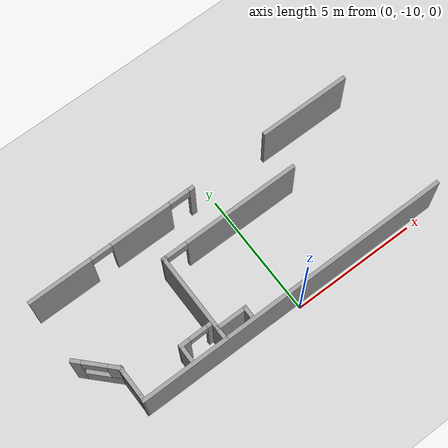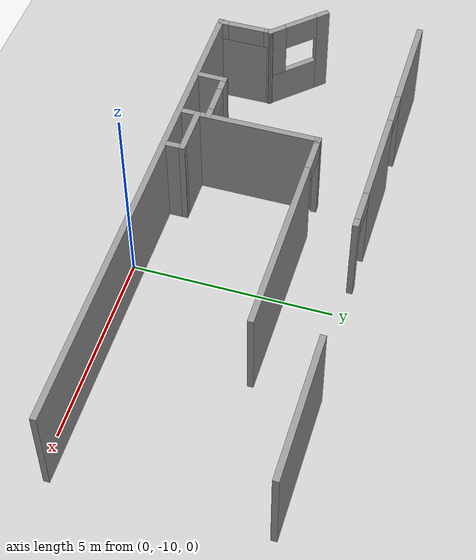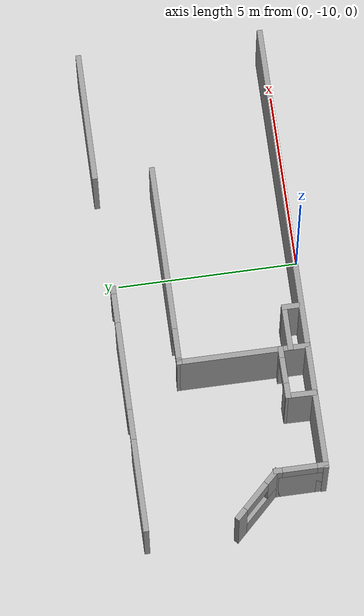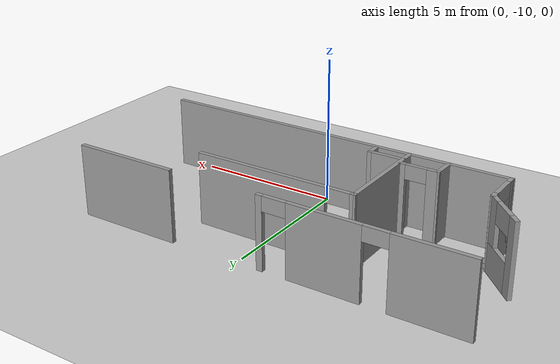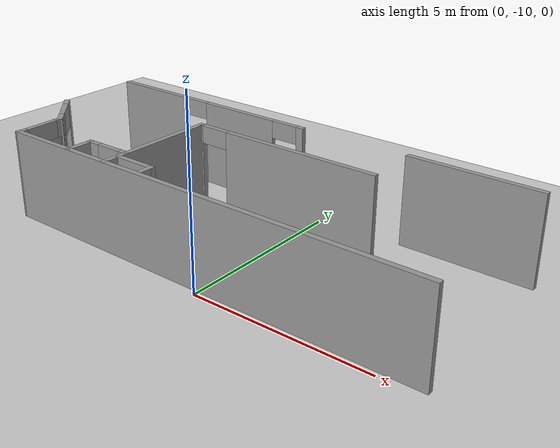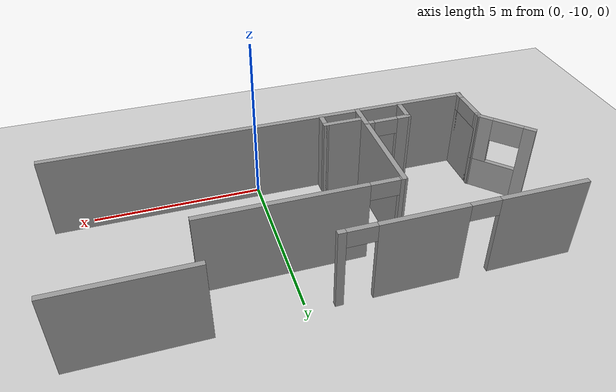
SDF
<sdf version="1.7">
 <world name="default">
  <model name="ground_plane">
   <static>1</static>
   <link name="link">
    <collision name="collision">
     <geometry><plane><normal>0 0 1</normal><size>100 100</size></plane></geometry>
     <surface><friction><ode><mu>100</mu><mu2>50</mu2></ode></friction></surface>
    </collision>
    <visual name="visual">
     <cast_shadows>0</cast_shadows>
     <geometry><plane><normal>0 0 1</normal><size>100 100</size></plane></geometry>
     <material>
      <script><uri>file://media/materials/scripts/gazebo.material</uri><name>Gazebo/Grey</name></script>
     </material>
    </visual>
   </link>
  </model>
  <model name="lake_harbour_office">
   <link name="Wall_0">
    <pose>0.435117 -5.60543 0 0 -0 2e-06</pose>
    <visual name="Wall_0_Visual_1">
     <pose>0.513518 0 1.25 0 -0 0</pose>
     <geometry><box><size>4.68067 0.15 2.5</size></box></geometry>
     <material>
      <script><uri>file://media/materials/scripts/gazebo.material</uri><name>Gazebo/Grey</name></script>
      <ambient>1 1 1 1</ambient>
      <shader type="pixel"/>
     </material>
     <meta><layer>0</layer></meta>
    </visual>
    <visual name="Wall_0_Visual_0">
     <pose>-2.75685 0 1.25 0 -0 0</pose>
     <geometry><box><size>0.194017 0.15 2.5</size></box></geometry>
     <material>
      <script><uri>file://media/materials/scripts/gazebo.material</uri><name>Gazebo/Grey</name></script>
      <ambient>1 1 1 1</ambient>
      <shader type="pixel"/>
     </material>
     <meta><layer>0</layer></meta>
    </visual>
    <visual name="Wall_0_Visual_2">
     <pose>-2.24333 0 2.25 0 -0 0</pose>
     <geometry><box><size>0.833019 0.15 0.5</size></box></geometry>
     <material>
      <script><uri>file://media/materials/scripts/gazebo.material</uri><name>Gazebo/Grey</name></script>
      <ambient>1 1 1 1</ambient>
      <shader type="pixel"/>
     </material>
     <meta><layer>0</layer></meta>
    </visual>
    <collision name="Wall_0_Collision_1">
     <pose>0.513518 0 1.25 0 -0 0</pose>
     <geometry><box><size>4.68067 0.15 2.5</size></box></geometry>
     <surface>
      <friction>
       <ode><mu>1</mu><mu2>1</mu2><fdir1>0 0 0</fdir1><slip1>0</slip1><slip2>0</slip2></ode>
       <torsional>
        <coefficient>1</coefficient>
        <patch_radius>0</patch_radius>
        <surface_radius>0</surface_radius>
        <use_patch_radius>1</use_patch_radius>
        <ode><slip>0</slip></ode>
       </torsional>
      </friction>
      <bounce><restitution_coefficient>0</restitution_coefficient><threshold>1e+06</threshold></bounce>
      <contact>
       <collide_without_contact>0</collide_without_contact>
       <collide_without_contact_bitmask>1</collide_without_contact_bitmask>
       <collide_bitmask>1</collide_bitmask>
       <ode>
        <soft_cfm>0</soft_cfm>
        <soft_erp>0.2</soft_erp>
        <kp>1e+13</kp>
        <kd>1</kd>
        <max_vel>0.01</max_vel>
        <min_depth>0</min_depth>
       </ode>
       <bullet>
        <split_impulse>1</split_impulse>
        <split_impulse_penetration_threshold>-0.01</split_impulse_penetration_threshold>
        <soft_cfm>0</soft_cfm>
        <soft_erp>0.2</soft_erp>
        <kp>1e+13</kp>
        <kd>1</kd>
       </bullet>
      </contact>
     </surface>
    </collision>
    <collision name="Wall_0_Collision_2">
     <pose>-2.24333 0 2.25 0 -0 0</pose>
     <geometry><box><size>0.833019 0.15 0.5</size></box></geometry>
     <surface>
      <friction>
       <ode><mu>1</mu><mu2>1</mu2><fdir1>0 0 0</fdir1><slip1>0</slip1><slip2>0</slip2></ode>
       <torsional>
        <coefficient>1</coefficient>
        <patch_radius>0</patch_radius>
        <surface_radius>0</surface_radius>
        <use_patch_radius>1</use_patch_radius>
        <ode><slip>0</slip></ode>
       </torsional>
      </friction>
      <bounce><restitution_coefficient>0</restitution_coefficient><threshold>1e+06</threshold></bounce>
      <contact>
       <collide_without_contact>0</collide_without_contact>
       <collide_without_contact_bitmask>1</collide_without_contact_bitmask>
       <collide_bitmask>1</collide_bitmask>
       <ode>
        <soft_cfm>0</soft_cfm>
        <soft_erp>0.2</soft_erp>
        <kp>1e+13</kp>
        <kd>1</kd>
        <max_vel>0.01</max_vel>
        <min_depth>0</min_depth>
       </ode>
       <bullet>
        <split_impulse>1</split_impulse>
        <split_impulse_penetration_threshold>-0.01</split_impulse_penetration_threshold>
        <soft_cfm>0</soft_cfm>
        <soft_erp>0.2</soft_erp>
        <kp>1e+13</kp>
        <kd>1</kd>
       </bullet>
      </contact>
     </surface>
    </collision>
    <collision name="Wall_0_Collision_0">
     <pose>-2.75685 0 1.25 0 -0 0</pose>
     <geometry><box><size>0.194017 0.15 2.5</size></box></geometry>
     <surface>
      <friction>
       <ode><mu>1</mu><mu2>1</mu2><fdir1>0 0 0</fdir1><slip1>0</slip1><slip2>0</slip2></ode>
       <torsional>
        <coefficient>1</coefficient>
        <patch_radius>0</patch_radius>
        <surface_radius>0</surface_radius>
        <use_patch_radius>1</use_patch_radius>
        <ode><slip>0</slip></ode>
       </torsional>
      </friction>
      <bounce><restitution_coefficient>0</restitution_coefficient><threshold>1e+06</threshold></bounce>
      <contact>
       <collide_without_contact>0</collide_without_contact>
       <collide_without_contact_bitmask>1</collide_without_contact_bitmask>
       <collide_bitmask>1</collide_bitmask>
       <ode>
        <soft_cfm>0</soft_cfm>
        <soft_erp>0.2</soft_erp>
        <kp>1e+13</kp>
        <kd>1</kd>
        <max_vel>0.01</max_vel>
        <min_depth>0</min_depth>
       </ode>
       <bullet>
        <split_impulse>1</split_impulse>
        <split_impulse_penetration_threshold>-0.01</split_impulse_penetration_threshold>
        <soft_cfm>0</soft_cfm>
        <soft_erp>0.2</soft_erp>
        <kp>1e+13</kp>
        <kd>1</kd>
       </bullet>
      </contact>
     </surface>
    </collision>
   </link>
   <link name="Wall_19">
    <pose>5.00431 -4.0195 0 0 -0 0</pose>
    <visual name="Wall_19_Visual">
     <pose>0 0 1.25 0 -0 0</pose>
     <geometry><box><size>3.67 0.15 2.5</size></box></geometry>
     <material>
      <script><uri>file://media/materials/scripts/gazebo.material</uri><name>Gazebo/Grey</name></script>
      <ambient>1 1 1 1</ambient>
      <shader type="pixel"/>
     </material>
     <meta><layer>0</layer></meta>
    </visual>
    <collision name="Wall_19_Collision">
     <pose>0 0 1.25 0 -0 0</pose>
     <geometry><box><size>3.67 0.15 2.5</size></box></geometry>
     <surface>
      <friction>
       <ode><mu>1</mu><mu2>1</mu2><fdir1>0 0 0</fdir1><slip1>0</slip1><slip2>0</slip2></ode>
       <torsional>
        <coefficient>1</coefficient>
        <patch_radius>0</patch_radius>
        <surface_radius>0</surface_radius>
        <use_patch_radius>1</use_patch_radius>
        <ode><slip>0</slip></ode>
       </torsional>
      </friction>
      <bounce><restitution_coefficient>0</restitution_coefficient><threshold>1e+06</threshold></bounce>
      <contact>
       <collide_without_contact>0</collide_without_contact>
       <collide_without_contact_bitmask>1</collide_without_contact_bitmask>
       <collide_bitmask>1</collide_bitmask>
       <ode>
        <soft_cfm>0</soft_cfm>
        <soft_erp>0.2</soft_erp>
        <kp>1e+13</kp>
        <kd>1</kd>
        <max_vel>0.01</max_vel>
        <min_depth>0</min_depth>
       </ode>
       <bullet>
        <split_impulse>1</split_impulse>
        <split_impulse_penetration_threshold>-0.01</split_impulse_penetration_threshold>
        <soft_cfm>0</soft_cfm>
        <soft_erp>0.2</soft_erp>
        <kp>1e+13</kp>
        <kd>1</kd>
       </bullet>
      </contact>
     </surface>
    </collision>
   </link>
   <link name="Wall_24">
    <pose>-2.34637 -7.35192 0 0 0 -1.57231</pose>
    <visual name="Wall_24_Visual">
     <pose>0 0 1.25 0 -0 0</pose>
     <geometry><box><size>3.64297 0.15 2.5</size></box></geometry>
     <material>
      <script><uri>file://media/materials/scripts/gazebo.material</uri><name>Gazebo/Grey</name></script>
      <ambient>1 1 1 1</ambient>
      <shader type="pixel"/>
     </material>
     <meta><layer>0</layer></meta>
    </visual>
    <collision name="Wall_24_Collision">
     <pose>0 0 1.25 0 -0 0</pose>
     <geometry><box><size>3.64297 0.15 2.5</size></box></geometry>
     <surface>
      <friction>
       <ode><mu>1</mu><mu2>1</mu2><fdir1>0 0 0</fdir1><slip1>0</slip1><slip2>0</slip2></ode>
       <torsional>
        <coefficient>1</coefficient>
        <patch_radius>0</patch_radius>
        <surface_radius>0</surface_radius>
        <use_patch_radius>1</use_patch_radius>
        <ode><slip>0</slip></ode>
       </torsional>
      </friction>
      <bounce><restitution_coefficient>0</restitution_coefficient><threshold>1e+06</threshold></bounce>
      <contact>
       <collide_without_contact>0</collide_without_contact>
       <collide_without_contact_bitmask>1</collide_without_contact_bitmask>
       <collide_bitmask>1</collide_bitmask>
       <ode>
        <soft_cfm>0</soft_cfm>
        <soft_erp>0.2</soft_erp>
        <kp>1e+13</kp>
        <kd>1</kd>
        <max_vel>0.01</max_vel>
        <min_depth>0</min_depth>
       </ode>
       <bullet>
        <split_impulse>1</split_impulse>
        <split_impulse_penetration_threshold>-0.01</split_impulse_penetration_threshold>
        <soft_cfm>0</soft_cfm>
        <soft_erp>0.2</soft_erp>
        <kp>1e+13</kp>
        <kd>1</kd>
       </bullet>
      </contact>
     </surface>
    </collision>
   </link>
   <link name="Wall_6">
    <pose>0.549997 -9.10971 0 0 -0 3.1413</pose>
    <visual name="Wall_6_Visual">
     <pose>0 0 1.25 0 -0 0</pose>
     <geometry><box><size>12.7032 0.15 2.5</size></box></geometry>
     <material>
      <script><uri>file://media/materials/scripts/gazebo.material</uri><name>Gazebo/Grey</name></script>
      <ambient>1 1 1 1</ambient>
      <shader type="pixel"/>
     </material>
     <meta><layer>0</layer></meta>
    </visual>
    <collision name="Wall_6_Collision">
     <pose>0 0 1.25 0 -0 0</pose>
     <geometry><box><size>12.7032 0.15 2.5</size></box></geometry>
     <surface>
      <friction>
       <ode><mu>1</mu><mu2>1</mu2><fdir1>0 0 0</fdir1><slip1>0</slip1><slip2>0</slip2></ode>
       <torsional>
        <coefficient>1</coefficient>
        <patch_radius>0</patch_radius>
        <surface_radius>0</surface_radius>
        <use_patch_radius>1</use_patch_radius>
        <ode><slip>0</slip></ode>
       </torsional>
      </friction>
      <bounce><restitution_coefficient>0</restitution_coefficient><threshold>1e+06</threshold></bounce>
      <contact>
       <collide_without_contact>0</collide_without_contact>
       <collide_without_contact_bitmask>1</collide_without_contact_bitmask>
       <collide_bitmask>1</collide_bitmask>
       <ode>
        <soft_cfm>0</soft_cfm>
        <soft_erp>0.2</soft_erp>
        <kp>1e+13</kp>
        <kd>1</kd>
        <max_vel>0.01</max_vel>
        <min_depth>0</min_depth>
       </ode>
       <bullet>
        <split_impulse>1</split_impulse>
        <split_impulse_penetration_threshold>-0.01</split_impulse_penetration_threshold>
        <soft_cfm>0</soft_cfm>
        <soft_erp>0.2</soft_erp>
        <kp>1e+13</kp>
        <kd>1</kd>
       </bullet>
      </contact>
     </surface>
    </collision>
   </link>
   <link name="Wall_74">
    <pose>-6.27356 -7.1759 0 0 0 -0.80256</pose>
    <visual name="Wall_74_Visual_1">
     <pose>0.183778 0 0.5 0 -0 0</pose>
     <geometry><box><size>1.40096 0.15 1</size></box></geometry>
     <material>
      <script><uri>file://media/materials/scripts/gazebo.material</uri><name>Gazebo/Grey</name></script>
      <ambient>1 1 1 1</ambient>
      <shader type="pixel"/>
     </material>
     <meta><layer>0</layer></meta>
    </visual>
    <visual name="Wall_74_Visual_3">
     <pose>-0.066704 0 2.15 0 -0 0</pose>
     <geometry><box><size>0.9 0.15 0.7</size></box></geometry>
     <material>
      <script><uri>file://media/materials/scripts/gazebo.material</uri><name>Gazebo/Grey</name></script>
      <ambient>1 1 1 1</ambient>
      <shader type="pixel"/>
     </material>
     <meta><layer>0</layer></meta>
    </visual>
    <visual name="Wall_74_Visual_0">
     <pose>-0.700482 0 1.25 0 -0 0</pose>
     <geometry><box><size>0.367556 0.15 2.5</size></box></geometry>
     <material>
      <script><uri>file://media/materials/scripts/gazebo.material</uri><name>Gazebo/Grey</name></script>
      <ambient>1 1 1 1</ambient>
      <shader type="pixel"/>
     </material>
     <meta><layer>0</layer></meta>
    </visual>
    <visual name="Wall_74_Visual_2">
     <pose>0.633778 0 1.75 0 -0 0</pose>
     <geometry><box><size>0.500964 0.15 1.5</size></box></geometry>
     <material>
      <script><uri>file://media/materials/scripts/gazebo.material</uri><name>Gazebo/Grey</name></script>
      <ambient>1 1 1 1</ambient>
      <shader type="pixel"/>
     </material>
     <meta><layer>0</layer></meta>
    </visual>
    <collision name="Wall_74_Collision_3">
     <pose>-0.066704 0 2.15 0 -0 0</pose>
     <geometry><box><size>0.9 0.15 0.7</size></box></geometry>
     <surface>
      <friction>
       <ode><mu>1</mu><mu2>1</mu2><fdir1>0 0 0</fdir1><slip1>0</slip1><slip2>0</slip2></ode>
       <torsional>
        <coefficient>1</coefficient>
        <patch_radius>0</patch_radius>
        <surface_radius>0</surface_radius>
        <use_patch_radius>1</use_patch_radius>
        <ode><slip>0</slip></ode>
       </torsional>
      </friction>
      <bounce><restitution_coefficient>0</restitution_coefficient><threshold>1e+06</threshold></bounce>
      <contact>
       <collide_without_contact>0</collide_without_contact>
       <collide_without_contact_bitmask>1</collide_without_contact_bitmask>
       <collide_bitmask>1</collide_bitmask>
       <ode>
        <soft_cfm>0</soft_cfm>
        <soft_erp>0.2</soft_erp>
        <kp>1e+13</kp>
        <kd>1</kd>
        <max_vel>0.01</max_vel>
        <min_depth>0</min_depth>
       </ode>
       <bullet>
        <split_impulse>1</split_impulse>
        <split_impulse_penetration_threshold>-0.01</split_impulse_penetration_threshold>
        <soft_cfm>0</soft_cfm>
        <soft_erp>0.2</soft_erp>
        <kp>1e+13</kp>
        <kd>1</kd>
       </bullet>
      </contact>
     </surface>
    </collision>
    <collision name="Wall_74_Collision_0">
     <pose>-0.700482 0 1.25 0 -0 0</pose>
     <geometry><box><size>0.367556 0.15 2.5</size></box></geometry>
     <surface>
      <friction>
       <ode><mu>1</mu><mu2>1</mu2><fdir1>0 0 0</fdir1><slip1>0</slip1><slip2>0</slip2></ode>
       <torsional>
        <coefficient>1</coefficient>
        <patch_radius>0</patch_radius>
        <surface_radius>0</surface_radius>
        <use_patch_radius>1</use_patch_radius>
        <ode><slip>0</slip></ode>
       </torsional>
      </friction>
      <bounce><restitution_coefficient>0</restitution_coefficient><threshold>1e+06</threshold></bounce>
      <contact>
       <collide_without_contact>0</collide_without_contact>
       <collide_without_contact_bitmask>1</collide_without_contact_bitmask>
       <collide_bitmask>1</collide_bitmask>
       <ode>
        <soft_cfm>0</soft_cfm>
        <soft_erp>0.2</soft_erp>
        <kp>1e+13</kp>
        <kd>1</kd>
        <max_vel>0.01</max_vel>
        <min_depth>0</min_depth>
       </ode>
       <bullet>
        <split_impulse>1</split_impulse>
        <split_impulse_penetration_threshold>-0.01</split_impulse_penetration_threshold>
        <soft_cfm>0</soft_cfm>
        <soft_erp>0.2</soft_erp>
        <kp>1e+13</kp>
        <kd>1</kd>
       </bullet>
      </contact>
     </surface>
    </collision>
    <collision name="Wall_74_Collision_1">
     <pose>0.183778 0 0.5 0 -0 0</pose>
     <geometry><box><size>1.40096 0.15 1</size></box></geometry>
     <surface>
      <friction>
       <ode><mu>1</mu><mu2>1</mu2><fdir1>0 0 0</fdir1><slip1>0</slip1><slip2>0</slip2></ode>
       <torsional>
        <coefficient>1</coefficient>
        <patch_radius>0</patch_radius>
        <surface_radius>0</surface_radius>
        <use_patch_radius>1</use_patch_radius>
        <ode><slip>0</slip></ode>
       </torsional>
      </friction>
      <bounce><restitution_coefficient>0</restitution_coefficient><threshold>1e+06</threshold></bounce>
      <contact>
       <collide_without_contact>0</collide_without_contact>
       <collide_without_contact_bitmask>1</collide_without_contact_bitmask>
       <collide_bitmask>1</collide_bitmask>
       <ode>
        <soft_cfm>0</soft_cfm>
        <soft_erp>0.2</soft_erp>
        <kp>1e+13</kp>
        <kd>1</kd>
        <max_vel>0.01</max_vel>
        <min_depth>0</min_depth>
       </ode>
       <bullet>
        <split_impulse>1</split_impulse>
        <split_impulse_penetration_threshold>-0.01</split_impulse_penetration_threshold>
        <soft_cfm>0</soft_cfm>
        <soft_erp>0.2</soft_erp>
        <kp>1e+13</kp>
        <kd>1</kd>
       </bullet>
      </contact>
     </surface>
    </collision>
    <collision name="Wall_74_Collision_2">
     <pose>0.633778 0 1.75 0 -0 0</pose>
     <geometry><box><size>0.500964 0.15 1.5</size></box></geometry>
     <surface>
      <friction>
       <ode><mu>1</mu><mu2>1</mu2><fdir1>0 0 0</fdir1><slip1>0</slip1><slip2>0</slip2></ode>
       <torsional>
        <coefficient>1</coefficient>
        <patch_radius>0</patch_radius>
        <surface_radius>0</surface_radius>
        <use_patch_radius>1</use_patch_radius>
        <ode><slip>0</slip></ode>
       </torsional>
      </friction>
      <bounce><restitution_coefficient>0</restitution_coefficient><threshold>1e+06</threshold></bounce>
      <contact>
       <collide_without_contact>0</collide_without_contact>
       <collide_without_contact_bitmask>1</collide_without_contact_bitmask>
       <collide_bitmask>1</collide_bitmask>
       <ode>
        <soft_cfm>0</soft_cfm>
        <soft_erp>0.2</soft_erp>
        <kp>1e+13</kp>
        <kd>1</kd>
        <max_vel>0.01</max_vel>
        <min_depth>0</min_depth>
       </ode>
       <bullet>
        <split_impulse>1</split_impulse>
        <split_impulse_penetration_threshold>-0.01</split_impulse_penetration_threshold>
        <soft_cfm>0</soft_cfm>
        <soft_erp>0.2</soft_erp>
        <kp>1e+13</kp>
        <kd>1</kd>
       </bullet>
      </contact>
     </surface>
    </collision>
   </link>
   <link name="Wall_75">
    <pose>-5.71123 -8.43287 0 0 0 -1.5708</pose>
    <inertial>
     <mass>1</mass>
     <inertia><ixx>1</ixx><ixy>0</ixy><ixz>0</ixz><iyy>1</iyy><iyz>0</iyz><izz>1</izz></inertia>
    </inertial>
    <visual name="ModelPreview_5::Wall_75::visual_3">
     <pose>0 0 1 0 -0 0</pose>
     <geometry><box><size>1.2 0.15 2</size></box></geometry>
     <material>
      <script><uri>file://media/materials/scripts/gazebo.material</uri><name>Gazebo/Grey</name></script>
      <ambient>1 1 1 1</ambient>
      <shader type="pixel"><normal_map>__default__</normal_map></shader>
      <diffuse>0.7 0.7 0.7 1</diffuse>
      <specular>0.01 0.01 0.01 1</specular>
      <emissive>0 0 0 1</emissive>
     </material>
     <meta><layer>0</layer></meta>
    </visual>
    <visual name="Wall_75_Visual_2">
     <pose>-0.030486 0 2.25 0 -0 0</pose>
     <geometry><box><size>0.951807 0.15 0.5</size></box></geometry>
     <material>
      <script><uri>file://media/materials/scripts/gazebo.material</uri><name>Gazebo/Grey</name></script>
      <ambient>1 1 1 1</ambient>
      <shader type="pixel"><normal_map>__default__</normal_map></shader>
      <diffuse>0.7 0.7 0.7 1</diffuse>
      <specular>0.01 0.01 0.01 1</specular>
      <emissive>0 0 0 1</emissive>
     </material>
     <meta><layer>0</layer></meta>
    </visual>
    <visual name="Wall_75_Visual_0">
     <pose>-0.628195 0 1.25 0 -0 0</pose>
     <geometry><box><size>0.24361 0.15 2.5</size></box></geometry>
     <material>
      <script><uri>file://media/materials/scripts/gazebo.material</uri><name>Gazebo/Grey</name></script>
      <ambient>1 1 1 1</ambient>
      <shader type="pixel"><normal_map>__default__</normal_map></shader>
      <diffuse>0.7 0.7 0.7 1</diffuse>
      <specular>0.01 0.01 0.01 1</specular>
      <emissive>0 0 0 1</emissive>
     </material>
     <meta><layer>0</layer></meta>
    </visual>
    <visual name="Wall_75_Visual_1">
     <pose>0.597709 0 1.25 0 -0 0</pose>
     <geometry><box><size>0.304583 0.15 2.5</size></box></geometry>
     <material>
      <script><uri>file://media/materials/scripts/gazebo.material</uri><name>Gazebo/Grey</name></script>
      <ambient>1 1 1 1</ambient>
      <shader type="pixel"><normal_map>__default__</normal_map></shader>
      <diffuse>0.7 0.7 0.7 1</diffuse>
      <specular>0.01 0.01 0.01 1</specular>
      <emissive>0 0 0 1</emissive>
     </material>
     <meta><layer>0</layer></meta>
    </visual>
    <collision name="Wall_75_Collision_1">
     <pose>0.597709 0 1.25 0 -0 0</pose>
     <geometry><box><size>0.304583 0.15 2.5</size></box></geometry>
     <surface>
      <friction>
       <ode><mu>1</mu><mu2>1</mu2><fdir1>0 0 0</fdir1><slip1>0</slip1><slip2>0</slip2></ode>
       <torsional>
        <coefficient>1</coefficient>
        <patch_radius>0</patch_radius>
        <surface_radius>0</surface_radius>
        <use_patch_radius>1</use_patch_radius>
        <ode><slip>0</slip></ode>
       </torsional>
      </friction>
      <bounce><restitution_coefficient>0</restitution_coefficient><threshold>1e+06</threshold></bounce>
      <contact>
       <collide_without_contact>0</collide_without_contact>
       <collide_without_contact_bitmask>1</collide_without_contact_bitmask>
       <collide_bitmask>1</collide_bitmask>
       <ode>
        <soft_cfm>0</soft_cfm>
        <soft_erp>0.2</soft_erp>
        <kp>1e+13</kp>
        <kd>1</kd>
        <max_vel>0.01</max_vel>
        <min_depth>0</min_depth>
       </ode>
       <bullet>
        <split_impulse>1</split_impulse>
        <split_impulse_penetration_threshold>-0.01</split_impulse_penetration_threshold>
        <soft_cfm>0</soft_cfm>
        <soft_erp>0.2</soft_erp>
        <kp>1e+13</kp>
        <kd>1</kd>
       </bullet>
      </contact>
     </surface>
    </collision>
    <collision name="Wall_75_Collision_0">
     <pose>-0.628195 0 1.25 0 -0 0</pose>
     <geometry><box><size>0.24361 0.15 2.5</size></box></geometry>
     <surface>
      <friction>
       <ode><mu>1</mu><mu2>1</mu2><fdir1>0 0 0</fdir1><slip1>0</slip1><slip2>0</slip2></ode>
       <torsional>
        <coefficient>1</coefficient>
        <patch_radius>0</patch_radius>
        <surface_radius>0</surface_radius>
        <use_patch_radius>1</use_patch_radius>
        <ode><slip>0</slip></ode>
       </torsional>
      </friction>
      <bounce><restitution_coefficient>0</restitution_coefficient><threshold>1e+06</threshold></bounce>
      <contact>
       <collide_without_contact>0</collide_without_contact>
       <collide_without_contact_bitmask>1</collide_without_contact_bitmask>
       <collide_bitmask>1</collide_bitmask>
       <ode>
        <soft_cfm>0</soft_cfm>
        <soft_erp>0.2</soft_erp>
        <kp>1e+13</kp>
        <kd>1</kd>
        <max_vel>0.01</max_vel>
        <min_depth>0</min_depth>
       </ode>
       <bullet>
        <split_impulse>1</split_impulse>
        <split_impulse_penetration_threshold>-0.01</split_impulse_penetration_threshold>
        <soft_cfm>0</soft_cfm>
        <soft_erp>0.2</soft_erp>
        <kp>1e+13</kp>
        <kd>1</kd>
       </bullet>
      </contact>
     </surface>
    </collision>
    <collision name="collision_3">
     <pose>0 0 1 0 -0 0</pose>
     <geometry><box><size>1.2 0.15 2</size></box></geometry>
     <surface>
      <friction>
       <ode><mu>1</mu><mu2>1</mu2><fdir1>0 0 0</fdir1><slip1>0</slip1><slip2>0</slip2></ode>
       <torsional>
        <coefficient>1</coefficient>
        <patch_radius>0</patch_radius>
        <surface_radius>0</surface_radius>
        <use_patch_radius>1</use_patch_radius>
        <ode><slip>0</slip></ode>
       </torsional>
      </friction>
      <bounce><restitution_coefficient>0</restitution_coefficient><threshold>1e+06</threshold></bounce>
      <contact>
       <collide_without_contact>0</collide_without_contact>
       <collide_without_contact_bitmask>1</collide_without_contact_bitmask>
       <collide_bitmask>1</collide_bitmask>
       <ode>
        <soft_cfm>0</soft_cfm>
        <soft_erp>0.2</soft_erp>
        <kp>1e+13</kp>
        <kd>1</kd>
        <max_vel>0.01</max_vel>
        <min_depth>0</min_depth>
       </ode>
       <bullet>
        <split_impulse>1</split_impulse>
        <split_impulse_penetration_threshold>-0.01</split_impulse_penetration_threshold>
        <soft_cfm>0</soft_cfm>
        <soft_erp>0.2</soft_erp>
        <kp>1e+13</kp>
        <kd>1</kd>
       </bullet>
      </contact>
     </surface>
    </collision>
    <collision name="Wall_75_Collision_2">
     <pose>-0.030486 0 2.25 0 -0 0</pose>
     <geometry><box><size>0.951807 0.15 0.5</size></box></geometry>
     <surface>
      <friction>
       <ode><mu>1</mu><mu2>1</mu2><fdir1>0 0 0</fdir1><slip1>0</slip1><slip2>0</slip2></ode>
       <torsional>
        <coefficient>1</coefficient>
        <patch_radius>0</patch_radius>
        <surface_radius>0</surface_radius>
        <use_patch_radius>1</use_patch_radius>
        <ode><slip>0</slip></ode>
       </torsional>
      </friction>
      <bounce><restitution_coefficient>0</restitution_coefficient><threshold>1e+06</threshold></bounce>
      <contact>
       <collide_without_contact>0</collide_without_contact>
       <collide_without_contact_bitmask>1</collide_without_contact_bitmask>
       <collide_bitmask>1</collide_bitmask>
       <ode>
        <soft_cfm>0</soft_cfm>
        <soft_erp>0.2</soft_erp>
        <kp>1e+13</kp>
        <kd>1</kd>
        <max_vel>0.01</max_vel>
        <min_depth>0</min_depth>
       </ode>
       <bullet>
        <split_impulse>1</split_impulse>
        <split_impulse_penetration_threshold>-0.01</split_impulse_penetration_threshold>
        <soft_cfm>0</soft_cfm>
        <soft_erp>0.2</soft_erp>
        <kp>1e+13</kp>
        <kd>1</kd>
       </bullet>
      </contact>
     </surface>
    </collision>
   </link>
   <link name="Wall_77">
    <pose>-1.7645 -8.63537 0 0 -0 0</pose>
    <visual name="Wall_77_Visual">
     <pose>0 0 1.25 0 -0 0</pose>
     <geometry><box><size>1.30081 0.15 2.5</size></box></geometry>
     <material>
      <script><uri>file://media/materials/scripts/gazebo.material</uri><name>Gazebo/Grey</name></script>
      <ambient>1 1 1 1</ambient>
      <shader type="pixel"/>
     </material>
     <meta><layer>0</layer></meta>
    </visual>
    <collision name="Wall_77_Collision">
     <pose>0 0 1.25 0 -0 0</pose>
     <geometry><box><size>1.30081 0.15 2.5</size></box></geometry>
     <surface>
      <friction>
       <ode><mu>1</mu><mu2>1</mu2><fdir1>0 0 0</fdir1><slip1>0</slip1><slip2>0</slip2></ode>
       <torsional>
        <coefficient>1</coefficient>
        <patch_radius>0</patch_radius>
        <surface_radius>0</surface_radius>
        <use_patch_radius>1</use_patch_radius>
        <ode><slip>0</slip></ode>
       </torsional>
      </friction>
      <bounce><restitution_coefficient>0</restitution_coefficient><threshold>1e+06</threshold></bounce>
      <contact>
       <collide_without_contact>0</collide_without_contact>
       <collide_without_contact_bitmask>1</collide_without_contact_bitmask>
       <collide_bitmask>1</collide_bitmask>
       <ode>
        <soft_cfm>0</soft_cfm>
        <soft_erp>0.2</soft_erp>
        <kp>1e+13</kp>
        <kd>1</kd>
        <max_vel>0.01</max_vel>
        <min_depth>0</min_depth>
       </ode>
       <bullet>
        <split_impulse>1</split_impulse>
        <split_impulse_penetration_threshold>-0.01</split_impulse_penetration_threshold>
        <soft_cfm>0</soft_cfm>
        <soft_erp>0.2</soft_erp>
        <kp>1e+13</kp>
        <kd>1</kd>
       </bullet>
      </contact>
     </surface>
    </collision>
   </link>
   <link name="Wall_78">
    <pose>-1.1891 -8.81037 0 0 0 -1.5708</pose>
    <visual name="Wall_78_Visual">
     <pose>0 0 1.25 0 -0 0</pose>
     <geometry><box><size>0.5 0.15 2.5</size></box></geometry>
     <material>
      <script><uri>file://media/materials/scripts/gazebo.material</uri><name>Gazebo/Grey</name></script>
      <ambient>1 1 1 1</ambient>
      <shader type="pixel"/>
     </material>
     <meta><layer>0</layer></meta>
    </visual>
    <collision name="Wall_78_Collision">
     <pose>0 0 1.25 0 -0 0</pose>
     <geometry><box><size>0.5 0.15 2.5</size></box></geometry>
     <surface>
      <friction>
       <ode><mu>1</mu><mu2>1</mu2><fdir1>0 0 0</fdir1><slip1>0</slip1><slip2>0</slip2></ode>
       <torsional>
        <coefficient>1</coefficient>
        <patch_radius>0</patch_radius>
        <surface_radius>0</surface_radius>
        <use_patch_radius>1</use_patch_radius>
        <ode><slip>0</slip></ode>
       </torsional>
      </friction>
      <bounce><restitution_coefficient>0</restitution_coefficient><threshold>1e+06</threshold></bounce>
      <contact>
       <collide_without_contact>0</collide_without_contact>
       <collide_without_contact_bitmask>1</collide_without_contact_bitmask>
       <collide_bitmask>1</collide_bitmask>
       <ode>
        <soft_cfm>0</soft_cfm>
        <soft_erp>0.2</soft_erp>
        <kp>1e+13</kp>
        <kd>1</kd>
        <max_vel>0.01</max_vel>
        <min_depth>0</min_depth>
       </ode>
       <bullet>
        <split_impulse>1</split_impulse>
        <split_impulse_penetration_threshold>-0.01</split_impulse_penetration_threshold>
        <soft_cfm>0</soft_cfm>
        <soft_erp>0.2</soft_erp>
        <kp>1e+13</kp>
        <kd>1</kd>
       </bullet>
      </contact>
     </surface>
    </collision>
   </link>
   <link name="Wall_80">
    <pose>-3.68253 -8.73417 0 0 -0 1.5544</pose>
    <visual name="Wall_80_Visual">
     <pose>0 0 1.25 0 -0 0</pose>
     <geometry><box><size>0.859182 0.15 2.5</size></box></geometry>
     <material>
      <script><uri>file://media/materials/scripts/gazebo.material</uri><name>Gazebo/Grey</name></script>
      <ambient>1 1 1 1</ambient>
      <shader type="pixel"/>
     </material>
     <meta><layer>0</layer></meta>
    </visual>
    <collision name="Wall_80_Collision">
     <pose>0 0 1.25 0 -0 0</pose>
     <geometry><box><size>0.859182 0.15 2.5</size></box></geometry>
     <surface>
      <friction>
       <ode><mu>1</mu><mu2>1</mu2><fdir1>0 0 0</fdir1><slip1>0</slip1><slip2>0</slip2></ode>
       <torsional>
        <coefficient>1</coefficient>
        <patch_radius>0</patch_radius>
        <surface_radius>0</surface_radius>
        <use_patch_radius>1</use_patch_radius>
        <ode><slip>0</slip></ode>
       </torsional>
      </friction>
      <bounce><restitution_coefficient>0</restitution_coefficient><threshold>1e+06</threshold></bounce>
      <contact>
       <collide_without_contact>0</collide_without_contact>
       <collide_without_contact_bitmask>1</collide_without_contact_bitmask>
       <collide_bitmask>1</collide_bitmask>
       <ode>
        <soft_cfm>0</soft_cfm>
        <soft_erp>0.2</soft_erp>
        <kp>1e+13</kp>
        <kd>1</kd>
        <max_vel>0.01</max_vel>
        <min_depth>0</min_depth>
       </ode>
       <bullet>
        <split_impulse>1</split_impulse>
        <split_impulse_penetration_threshold>-0.01</split_impulse_penetration_threshold>
        <soft_cfm>0</soft_cfm>
        <soft_erp>0.2</soft_erp>
        <kp>1e+13</kp>
        <kd>1</kd>
       </bullet>
      </contact>
     </surface>
    </collision>
   </link>
   <link name="Wall_81">
    <pose>-3.01412 -8.37382 0 0 -0 0.008772</pose>
    <visual name="Wall_81_Visual_2">
     <pose>0.057151 0 2.25 0 -0 0</pose>
     <geometry><box><size>0.724825 0.15 0.5</size></box></geometry>
     <material>
      <script><uri>file://media/materials/scripts/gazebo.material</uri><name>Gazebo/Grey</name></script>
      <ambient>1 1 1 1</ambient>
      <shader type="pixel"/>
     </material>
     <meta><layer>0</layer></meta>
    </visual>
    <visual name="Wall_81_Visual_1">
     <pose>0.578589 0 1.25 0 -0 0</pose>
     <geometry><box><size>0.318051 0.15 2.5</size></box></geometry>
     <material>
      <script><uri>file://media/materials/scripts/gazebo.material</uri><name>Gazebo/Grey</name></script>
      <ambient>1 1 1 1</ambient>
      <shader type="pixel"/>
     </material>
     <meta><layer>0</layer></meta>
    </visual>
    <visual name="Wall_81_Visual_0">
     <pose>-0.521438 0 1.25 0 -0 0</pose>
     <geometry><box><size>0.432353 0.15 2.5</size></box></geometry>
     <material>
      <script><uri>file://media/materials/scripts/gazebo.material</uri><name>Gazebo/Grey</name></script>
      <ambient>1 1 1 1</ambient>
      <shader type="pixel"/>
     </material>
     <meta><layer>0</layer></meta>
    </visual>
    <collision name="Wall_81_Collision_0">
     <pose>-0.521438 0 1.25 0 -0 0</pose>
     <geometry><box><size>0.432353 0.15 2.5</size></box></geometry>
     <surface>
      <friction>
       <ode><mu>1</mu><mu2>1</mu2><fdir1>0 0 0</fdir1><slip1>0</slip1><slip2>0</slip2></ode>
       <torsional>
        <coefficient>1</coefficient>
        <patch_radius>0</patch_radius>
        <surface_radius>0</surface_radius>
        <use_patch_radius>1</use_patch_radius>
        <ode><slip>0</slip></ode>
       </torsional>
      </friction>
      <bounce><restitution_coefficient>0</restitution_coefficient><threshold>1e+06</threshold></bounce>
      <contact>
       <collide_without_contact>0</collide_without_contact>
       <collide_without_contact_bitmask>1</collide_without_contact_bitmask>
       <collide_bitmask>1</collide_bitmask>
       <ode>
        <soft_cfm>0</soft_cfm>
        <soft_erp>0.2</soft_erp>
        <kp>1e+13</kp>
        <kd>1</kd>
        <max_vel>0.01</max_vel>
        <min_depth>0</min_depth>
       </ode>
       <bullet>
        <split_impulse>1</split_impulse>
        <split_impulse_penetration_threshold>-0.01</split_impulse_penetration_threshold>
        <soft_cfm>0</soft_cfm>
        <soft_erp>0.2</soft_erp>
        <kp>1e+13</kp>
        <kd>1</kd>
       </bullet>
      </contact>
     </surface>
    </collision>
    <collision name="Wall_81_Collision_1">
     <pose>0.578589 0 1.25 0 -0 0</pose>
     <geometry><box><size>0.318051 0.15 2.5</size></box></geometry>
     <surface>
      <friction>
       <ode><mu>1</mu><mu2>1</mu2><fdir1>0 0 0</fdir1><slip1>0</slip1><slip2>0</slip2></ode>
       <torsional>
        <coefficient>1</coefficient>
        <patch_radius>0</patch_radius>
        <surface_radius>0</surface_radius>
        <use_patch_radius>1</use_patch_radius>
        <ode><slip>0</slip></ode>
       </torsional>
      </friction>
      <bounce><restitution_coefficient>0</restitution_coefficient><threshold>1e+06</threshold></bounce>
      <contact>
       <collide_without_contact>0</collide_without_contact>
       <collide_without_contact_bitmask>1</collide_without_contact_bitmask>
       <collide_bitmask>1</collide_bitmask>
       <ode>
        <soft_cfm>0</soft_cfm>
        <soft_erp>0.2</soft_erp>
        <kp>1e+13</kp>
        <kd>1</kd>
        <max_vel>0.01</max_vel>
        <min_depth>0</min_depth>
       </ode>
       <bullet>
        <split_impulse>1</split_impulse>
        <split_impulse_penetration_threshold>-0.01</split_impulse_penetration_threshold>
        <soft_cfm>0</soft_cfm>
        <soft_erp>0.2</soft_erp>
        <kp>1e+13</kp>
        <kd>1</kd>
       </bullet>
      </contact>
     </surface>
    </collision>
    <collision name="Wall_81_Collision_2">
     <pose>0.057151 0 2.25 0 -0 0</pose>
     <geometry><box><size>0.724825 0.15 0.5</size></box></geometry>
     <surface>
      <friction>
       <ode><mu>1</mu><mu2>1</mu2><fdir1>0 0 0</fdir1><slip1>0</slip1><slip2>0</slip2></ode>
       <torsional>
        <coefficient>1</coefficient>
        <patch_radius>0</patch_radius>
        <surface_radius>0</surface_radius>
        <use_patch_radius>1</use_patch_radius>
        <ode><slip>0</slip></ode>
       </torsional>
      </friction>
      <bounce><restitution_coefficient>0</restitution_coefficient><threshold>1e+06</threshold></bounce>
      <contact>
       <collide_without_contact>0</collide_without_contact>
       <collide_without_contact_bitmask>1</collide_without_contact_bitmask>
       <collide_bitmask>1</collide_bitmask>
       <ode>
        <soft_cfm>0</soft_cfm>
        <soft_erp>0.2</soft_erp>
        <kp>1e+13</kp>
        <kd>1</kd>
        <max_vel>0.01</max_vel>
        <min_depth>0</min_depth>
       </ode>
       <bullet>
        <split_impulse>1</split_impulse>
        <split_impulse_penetration_threshold>-0.01</split_impulse_penetration_threshold>
        <soft_cfm>0</soft_cfm>
        <soft_erp>0.2</soft_erp>
        <kp>1e+13</kp>
        <kd>1</kd>
       </bullet>
      </contact>
     </surface>
    </collision>
   </link>
   <link name="Wall_83">
    <pose>-3.42679 -4.10186 0 0 -0 0</pose>
    <visual name="Wall_83_Visual_2">
     <pose>3.35168 0 1.25 0 -0 0</pose>
     <geometry><box><size>0.22366 0.15 2.5</size></box></geometry>
     <material>
      <script><uri>file://media/materials/scripts/gazebo.material</uri><name>Gazebo/Grey</name></script>
      <ambient>1 1 1 1</ambient>
      <shader type="pixel"/>
     </material>
     <meta><layer>0</layer></meta>
    </visual>
    <visual name="Wall_83_Visual_3">
     <pose>-0.470787 0 2.25 0 -0 0</pose>
     <geometry><box><size>0.841878 0.15 0.5</size></box></geometry>
     <material>
      <script><uri>file://media/materials/scripts/gazebo.material</uri><name>Gazebo/Grey</name></script>
      <ambient>1 1 1 1</ambient>
      <shader type="pixel"/>
     </material>
     <meta><layer>0</layer></meta>
    </visual>
    <visual name="Wall_83_Visual_4">
     <pose>2.83053 0 2.25 0 -0 0</pose>
     <geometry><box><size>0.818629 0.15 0.5</size></box></geometry>
     <material>
      <script><uri>file://media/materials/scripts/gazebo.material</uri><name>Gazebo/Grey</name></script>
      <ambient>1 1 1 1</ambient>
      <shader type="pixel"/>
     </material>
     <meta><layer>0</layer></meta>
    </visual>
    <visual name="Wall_83_Visual_0">
     <pose>-2.17762 0 1.25 0 -0 0</pose>
     <geometry><box><size>2.57178 0.15 2.5</size></box></geometry>
     <material>
      <script><uri>file://media/materials/scripts/gazebo.material</uri><name>Gazebo/Grey</name></script>
      <ambient>1 1 1 1</ambient>
      <shader type="pixel"/>
     </material>
     <meta><layer>0</layer></meta>
    </visual>
    <visual name="Wall_83_Visual_1">
     <pose>1.18569 0 1.25 0 -0 0</pose>
     <geometry><box><size>2.47107 0.15 2.5</size></box></geometry>
     <material>
      <script><uri>file://media/materials/scripts/gazebo.material</uri><name>Gazebo/Grey</name></script>
      <ambient>1 1 1 1</ambient>
      <shader type="pixel"/>
     </material>
     <meta><layer>0</layer></meta>
    </visual>
    <collision name="Wall_83_Collision_0">
     <pose>-2.17762 0 1.25 0 -0 0</pose>
     <geometry><box><size>2.57178 0.15 2.5</size></box></geometry>
     <surface>
      <friction>
       <ode><mu>1</mu><mu2>1</mu2><fdir1>0 0 0</fdir1><slip1>0</slip1><slip2>0</slip2></ode>
       <torsional>
        <coefficient>1</coefficient>
        <patch_radius>0</patch_radius>
        <surface_radius>0</surface_radius>
        <use_patch_radius>1</use_patch_radius>
        <ode><slip>0</slip></ode>
       </torsional>
      </friction>
      <bounce><restitution_coefficient>0</restitution_coefficient><threshold>1e+06</threshold></bounce>
      <contact>
       <collide_without_contact>0</collide_without_contact>
       <collide_without_contact_bitmask>1</collide_without_contact_bitmask>
       <collide_bitmask>1</collide_bitmask>
       <ode>
        <soft_cfm>0</soft_cfm>
        <soft_erp>0.2</soft_erp>
        <kp>1e+13</kp>
        <kd>1</kd>
        <max_vel>0.01</max_vel>
        <min_depth>0</min_depth>
       </ode>
       <bullet>
        <split_impulse>1</split_impulse>
        <split_impulse_penetration_threshold>-0.01</split_impulse_penetration_threshold>
        <soft_cfm>0</soft_cfm>
        <soft_erp>0.2</soft_erp>
        <kp>1e+13</kp>
        <kd>1</kd>
       </bullet>
      </contact>
     </surface>
    </collision>
    <collision name="Wall_83_Collision_1">
     <pose>1.18569 0 1.25 0 -0 0</pose>
     <geometry><box><size>2.47107 0.15 2.5</size></box></geometry>
     <surface>
      <friction>
       <ode><mu>1</mu><mu2>1</mu2><fdir1>0 0 0</fdir1><slip1>0</slip1><slip2>0</slip2></ode>
       <torsional>
        <coefficient>1</coefficient>
        <patch_radius>0</patch_radius>
        <surface_radius>0</surface_radius>
        <use_patch_radius>1</use_patch_radius>
        <ode><slip>0</slip></ode>
       </torsional>
      </friction>
      <bounce><restitution_coefficient>0</restitution_coefficient><threshold>1e+06</threshold></bounce>
      <contact>
       <collide_without_contact>0</collide_without_contact>
       <collide_without_contact_bitmask>1</collide_without_contact_bitmask>
       <collide_bitmask>1</collide_bitmask>
       <ode>
        <soft_cfm>0</soft_cfm>
        <soft_erp>0.2</soft_erp>
        <kp>1e+13</kp>
        <kd>1</kd>
        <max_vel>0.01</max_vel>
        <min_depth>0</min_depth>
       </ode>
       <bullet>
        <split_impulse>1</split_impulse>
        <split_impulse_penetration_threshold>-0.01</split_impulse_penetration_threshold>
        <soft_cfm>0</soft_cfm>
        <soft_erp>0.2</soft_erp>
        <kp>1e+13</kp>
        <kd>1</kd>
       </bullet>
      </contact>
     </surface>
    </collision>
    <collision name="Wall_83_Collision_2">
     <pose>3.35168 0 1.25 0 -0 0</pose>
     <geometry><box><size>0.22366 0.15 2.5</size></box></geometry>
     <surface>
      <friction>
       <ode><mu>1</mu><mu2>1</mu2><fdir1>0 0 0</fdir1><slip1>0</slip1><slip2>0</slip2></ode>
       <torsional>
        <coefficient>1</coefficient>
        <patch_radius>0</patch_radius>
        <surface_radius>0</surface_radius>
        <use_patch_radius>1</use_patch_radius>
        <ode><slip>0</slip></ode>
       </torsional>
      </friction>
      <bounce><restitution_coefficient>0</restitution_coefficient><threshold>1e+06</threshold></bounce>
      <contact>
       <collide_without_contact>0</collide_without_contact>
       <collide_without_contact_bitmask>1</collide_without_contact_bitmask>
       <collide_bitmask>1</collide_bitmask>
       <ode>
        <soft_cfm>0</soft_cfm>
        <soft_erp>0.2</soft_erp>
        <kp>1e+13</kp>
        <kd>1</kd>
        <max_vel>0.01</max_vel>
        <min_depth>0</min_depth>
       </ode>
       <bullet>
        <split_impulse>1</split_impulse>
        <split_impulse_penetration_threshold>-0.01</split_impulse_penetration_threshold>
        <soft_cfm>0</soft_cfm>
        <soft_erp>0.2</soft_erp>
        <kp>1e+13</kp>
        <kd>1</kd>
       </bullet>
      </contact>
     </surface>
    </collision>
    <collision name="Wall_83_Collision_4">
     <pose>2.83053 0 2.25 0 -0 0</pose>
     <geometry><box><size>0.818629 0.15 0.5</size></box></geometry>
     <surface>
      <friction>
       <ode><mu>1</mu><mu2>1</mu2><fdir1>0 0 0</fdir1><slip1>0</slip1><slip2>0</slip2></ode>
       <torsional>
        <coefficient>1</coefficient>
        <patch_radius>0</patch_radius>
        <surface_radius>0</surface_radius>
        <use_patch_radius>1</use_patch_radius>
        <ode><slip>0</slip></ode>
       </torsional>
      </friction>
      <bounce><restitution_coefficient>0</restitution_coefficient><threshold>1e+06</threshold></bounce>
      <contact>
       <collide_without_contact>0</collide_without_contact>
       <collide_without_contact_bitmask>1</collide_without_contact_bitmask>
       <collide_bitmask>1</collide_bitmask>
       <ode>
        <soft_cfm>0</soft_cfm>
        <soft_erp>0.2</soft_erp>
        <kp>1e+13</kp>
        <kd>1</kd>
        <max_vel>0.01</max_vel>
        <min_depth>0</min_depth>
       </ode>
       <bullet>
        <split_impulse>1</split_impulse>
        <split_impulse_penetration_threshold>-0.01</split_impulse_penetration_threshold>
        <soft_cfm>0</soft_cfm>
        <soft_erp>0.2</soft_erp>
        <kp>1e+13</kp>
        <kd>1</kd>
       </bullet>
      </contact>
     </surface>
    </collision>
    <collision name="Wall_83_Collision_3">
     <pose>-0.470787 0 2.25 0 -0 0</pose>
     <geometry><box><size>0.841878 0.15 0.5</size></box></geometry>
     <surface>
      <friction>
       <ode><mu>1</mu><mu2>1</mu2><fdir1>0 0 0</fdir1><slip1>0</slip1><slip2>0</slip2></ode>
       <torsional>
        <coefficient>1</coefficient>
        <patch_radius>0</patch_radius>
        <surface_radius>0</surface_radius>
        <use_patch_radius>1</use_patch_radius>
        <ode><slip>0</slip></ode>
       </torsional>
      </friction>
      <bounce><restitution_coefficient>0</restitution_coefficient><threshold>1e+06</threshold></bounce>
      <contact>
       <collide_without_contact>0</collide_without_contact>
       <collide_without_contact_bitmask>1</collide_without_contact_bitmask>
       <collide_bitmask>1</collide_bitmask>
       <ode>
        <soft_cfm>0</soft_cfm>
        <soft_erp>0.2</soft_erp>
        <kp>1e+13</kp>
        <kd>1</kd>
        <max_vel>0.01</max_vel>
        <min_depth>0</min_depth>
       </ode>
       <bullet>
        <split_impulse>1</split_impulse>
        <split_impulse_penetration_threshold>-0.01</split_impulse_penetration_threshold>
        <soft_cfm>0</soft_cfm>
        <soft_erp>0.2</soft_erp>
        <kp>1e+13</kp>
        <kd>1</kd>
       </bullet>
      </contact>
     </surface>
    </collision>
   </link>
   <static>1</static>
   <pose>-0.777603 -0.682688 0 0 -0 0</pose>
  </model>
 </world>
</sdf>
